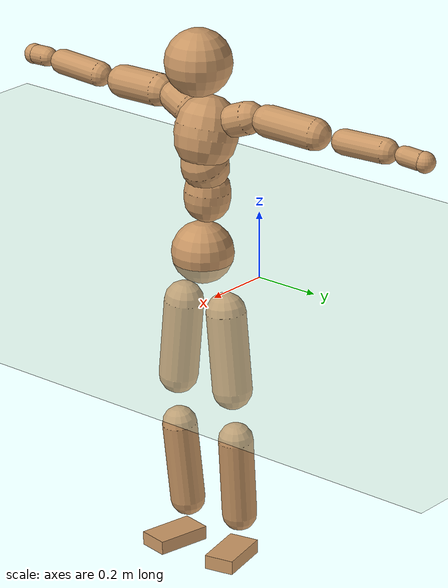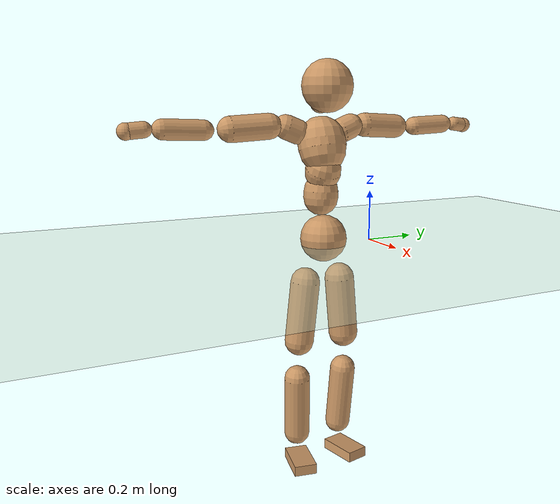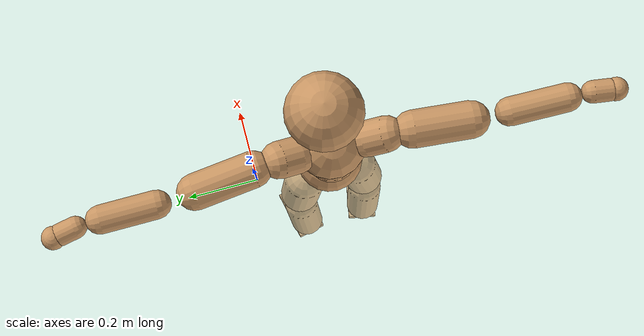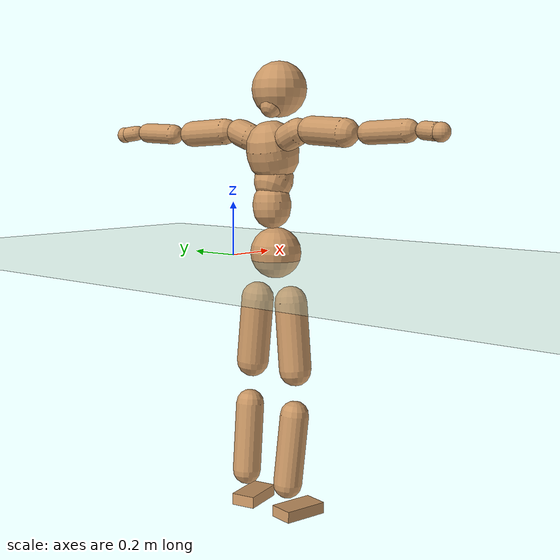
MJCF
<mujoco model="humanoid">
  <compiler coordinate="local" angle="radian"/>
  <default>
    <joint damping="0.0" armature="0.01" stiffness="0.0" limited="true"/>
    <geom conaffinity="1" condim="3" contype="7" margin="0.001" rgba="0.8 0.6 .4 1"/>
  </default>
  <asset>
    <texture type="skybox" builtin="gradient" rgb1=".4 .5 .6" rgb2="0 0 0" width="100" height="100"/>
    <texture builtin="flat" height="1278" mark="cross" markrgb="1 1 1" name="texgeom" random="0.01" rgb1="0.8 0.6 0.4" rgb2="0.8 0.6 0.4" type="cube" width="127"/>
    <texture builtin="checker" height="100" name="texplane" rgb1="0 0 0" rgb2="0.8 0.8 0.8" type="2d" width="100"/>
    <material name="MatPlane" reflectance="0.5" shininess="1" specular="1" texrepeat="60 60" texture="texplane"/>
    <material name="geom" texture="texgeom" texuniform="true"/>
  </asset>
  <worldbody>
    <light cutoff="100" diffuse="1 1 1" dir="-0 0 -1.3" directional="true" exponent="1" pos="0 0 1.3" specular=".1 .1 .1"/>
    <geom conaffinity="1" condim="3" name="floor" pos="0 0 0" rgba="0.8 0.9 0.8 1" size="100 100 .2" type="plane" material="MatPlane"/>
    <body name="Pelvis" pos="-0.0003 -0.2122 0.0246">
      <freejoint name="Pelvis"/>
      <geom type="sphere" contype="1" conaffinity="1" density="500" size="0.0926" pos="0.0000 0.0000 0.0000" name="Pelvis"/>
      <body name="L_Hip" pos="-0.0092 0.0719 -0.0927">
        <joint name="L_Hip_x" type="hinge" pos="0 0 0" axis="1 0 0" stiffness="800" damping="80" armature="0.02" range="-180.0000 180.0000"/>
        <joint name="L_Hip_y" type="hinge" pos="0 0 0" axis="0 1 0" stiffness="800" damping="80" armature="0.02" range="-180.0000 180.0000"/>
        <joint name="L_Hip_z" type="hinge" pos="0 0 0" axis="0 0 1" stiffness="800" damping="80" armature="0.02" range="-180.0000 180.0000"/>
        <geom type="capsule" contype="1" conaffinity="1" density="500" fromto="-0.0010 0.0074 -0.0799 -0.0039 0.0295 -0.3198" size="0.0597" name="L_Hip"/>
        <body name="L_Knee" pos="-0.0049 0.0368 -0.3997">
          <joint name="L_Knee_x" type="hinge" pos="0 0 0" axis="1 0 0" stiffness="800" damping="80" armature="0.02" range="-180.0000 180.0000"/>
          <joint name="L_Knee_y" type="hinge" pos="0 0 0" axis="0 1 0" stiffness="800" damping="80" armature="0.02" range="-180.0000 180.0000"/>
          <joint name="L_Knee_z" type="hinge" pos="0 0 0" axis="0 0 1" stiffness="800" damping="80" armature="0.02" range="-180.0000 180.0000"/>
          <geom type="capsule" contype="1" conaffinity="1" density="500" fromto="-0.0090 -0.0024 -0.0845 -0.0360 -0.0096 -0.3380" size="0.0524" name="L_Knee"/>
          <body name="L_Ankle" pos="-0.045 -0.0121 -0.4225">
            <joint name="L_Ankle_x" type="hinge" pos="0 0 0" axis="1 0 0" stiffness="800" damping="80" armature="0.02" range="-180.0000 180.0000"/>
            <joint name="L_Ankle_y" type="hinge" pos="0 0 0" axis="0 1 0" stiffness="800" damping="80" armature="0.02" range="-180.0000 180.0000"/>
            <joint name="L_Ankle_z" type="hinge" pos="0 0 0" axis="0 0 1" stiffness="800" damping="80" armature="0.02" range="-180.0000 180.0000"/>
            <geom type="box" contype="1" conaffinity="1" density="500" pos="0.0590 0.0127 -0.0297" size="0.082 0.0454 0.0215" quat="0.9944 0.0000 0.0000 0.1060" name="L_Ankle"/>
            <body name="L_Toe" pos="0.118 0.0254 -0.0595">
              <joint name="L_Toe_x" type="hinge" pos="0 0 0" axis="1 0 0" stiffness="500" damping="50" armature="0.02" range="-180.0000 180.0000"/>
              <joint name="L_Toe_y" type="hinge" pos="0 0 0" axis="0 1 0" stiffness="500" damping="50" armature="0.02" range="-180.0000 180.0000"/>
              <joint name="L_Toe_z" type="hinge" pos="0 0 0" axis="0 0 1" stiffness="500" damping="50" armature="0.02" range="-180.0000 180.0000"/>
              <geom type="box" contype="1" conaffinity="1" density="500" pos="0.0000 0.0000 0.0296" size="0.0009 0.0023 0.0011" quat="0.9937 0.0000 0.0000 0.1122" name="L_Toe"/>
            </body>
          </body>
        </body>
      </body>
      <body name="R_Hip" pos="-0.0049 -0.0693 -0.092">
        <joint name="R_Hip_x" type="hinge" pos="0 0 0" axis="1 0 0" stiffness="800" damping="80" armature="0.02" range="-180.0000 180.0000"/>
        <joint name="R_Hip_y" type="hinge" pos="0 0 0" axis="0 1 0" stiffness="800" damping="80" armature="0.02" range="-180.0000 180.0000"/>
        <joint name="R_Hip_z" type="hinge" pos="0 0 0" axis="0 0 1" stiffness="800" damping="80" armature="0.02" range="-180.0000 180.0000"/>
        <geom type="capsule" contype="1" conaffinity="1" density="500" fromto="-0.0014 -0.0087 -0.0816 -0.0057 -0.0348 -0.3264" size="0.0588" name="R_Hip"/>
        <body name="R_Knee" pos="-0.0071 -0.0435 -0.408">
          <joint name="R_Knee_x" type="hinge" pos="0 0 0" axis="1 0 0" stiffness="800" damping="80" armature="0.02" range="-180.0000 180.0000"/>
          <joint name="R_Knee_y" type="hinge" pos="0 0 0" axis="0 1 0" stiffness="800" damping="80" armature="0.02" range="-180.0000 180.0000"/>
          <joint name="R_Knee_z" type="hinge" pos="0 0 0" axis="0 0 1" stiffness="800" damping="80" armature="0.02" range="-180.0000 180.0000"/>
          <geom type="capsule" contype="1" conaffinity="1" density="500" fromto="-0.0085 0.0032 -0.0848 -0.0341 0.0126 -0.3394" size="0.0527" name="R_Knee"/>
          <body name="R_Ankle" pos="-0.0427 0.0158 -0.4242">
            <joint name="R_Ankle_x" type="hinge" pos="0 0 0" axis="1 0 0" stiffness="800" damping="80" armature="0.02" range="-180.0000 180.0000"/>
            <joint name="R_Ankle_y" type="hinge" pos="0 0 0" axis="0 1 0" stiffness="800" damping="80" armature="0.02" range="-180.0000 180.0000"/>
            <joint name="R_Ankle_z" type="hinge" pos="0 0 0" axis="0 0 1" stiffness="800" damping="80" armature="0.02" range="-180.0000 180.0000"/>
            <geom type="box" contype="1" conaffinity="1" density="500" pos="0.0608 -0.0115 -0.0255" size="0.0846 0.0463 0.0209" quat="0.9957 0.0000 0.0000 -0.0931" name="R_Ankle"/>
            <body name="R_Toe" pos="0.1217 -0.023 -0.0509">
              <joint name="R_Toe_x" type="hinge" pos="0 0 0" axis="1 0 0" stiffness="500" damping="50" armature="0.02" range="-180.0000 180.0000"/>
              <joint name="R_Toe_y" type="hinge" pos="0 0 0" axis="0 1 0" stiffness="500" damping="50" armature="0.02" range="-180.0000 180.0000"/>
              <joint name="R_Toe_z" type="hinge" pos="0 0 0" axis="0 0 1" stiffness="500" damping="50" armature="0.02" range="-180.0000 180.0000"/>
              <geom type="box" contype="1" conaffinity="1" density="500" pos="0.0000 0.0000 0.0276" size="0.0009 0.0023 0.0012" quat="0.9965 0.0000 0.0000 -0.0838" name="R_Toe"/>
            </body>
          </body>
        </body>
      </body>
      <body name="Torso" pos="-0.0212 -0.0023 0.1063">
        <joint name="Torso_x" type="hinge" pos="0 0 0" axis="1 0 0" stiffness="1000" damping="100" armature="0.02" range="-180.0000 180.0000"/>
        <joint name="Torso_y" type="hinge" pos="0 0 0" axis="0 1 0" stiffness="1000" damping="100" armature="0.02" range="-180.0000 180.0000"/>
        <joint name="Torso_z" type="hinge" pos="0 0 0" axis="0 0 1" stiffness="1000" damping="100" armature="0.02" range="-180.0000 180.0000"/>
        <geom type="capsule" contype="1" conaffinity="1" density="500" fromto="-0.0006 0.0023 0.0784 -0.0004 0.0015 0.0522" size="0.0687" name="Torso"/>
        <body name="Spine" pos="-0.001 0.0038 0.1306">
          <joint name="Spine_x" type="hinge" pos="0 0 0" axis="1 0 0" stiffness="1000" damping="100" armature="0.02" range="-180.0000 180.0000"/>
          <joint name="Spine_y" type="hinge" pos="0 0 0" axis="0 1 0" stiffness="1000" damping="100" armature="0.02" range="-180.0000 180.0000"/>
          <joint name="Spine_z" type="hinge" pos="0 0 0" axis="0 0 1" stiffness="1000" damping="100" armature="0.02" range="-180.0000 180.0000"/>
          <geom type="capsule" contype="1" conaffinity="1" density="500" fromto="0.0158 0.0005 0.0309 0.0105 0.0004 0.0206" size="0.0703" name="Spine"/>
          <body name="Chest" pos="0.0263 0.0009 0.0514">
            <joint name="Chest_x" type="hinge" pos="0 0 0" axis="1 0 0" stiffness="1000" damping="100" armature="0.02" range="-180.0000 180.0000"/>
            <joint name="Chest_y" type="hinge" pos="0 0 0" axis="0 1 0" stiffness="1000" damping="100" armature="0.02" range="-180.0000 180.0000"/>
            <joint name="Chest_z" type="hinge" pos="0 0 0" axis="0 0 1" stiffness="1000" damping="100" armature="0.02" range="-180.0000 180.0000"/>
            <geom type="capsule" contype="1" conaffinity="1" density="500" fromto="-0.0243 -0.0014 0.0909 -0.0162 -0.0010 0.0606" size="0.0937" name="Chest"/>
            <body name="Neck" pos="-0.0419 -0.0043 0.2189">
              <joint name="Neck_x" type="hinge" pos="0 0 0" axis="1 0 0" stiffness="500" damping="50" armature="0.02" range="-180.0000 180.0000"/>
              <joint name="Neck_y" type="hinge" pos="0 0 0" axis="0 1 0" stiffness="500" damping="50" armature="0.02" range="-180.0000 180.0000"/>
              <joint name="Neck_z" type="hinge" pos="0 0 0" axis="0 0 1" stiffness="500" damping="50" armature="0.02" range="-180.0000 180.0000"/>
              <geom type="capsule" contype="1" conaffinity="1" density="500" fromto="0.0118 0.0011 0.0151 0.0473 0.0045 0.0605" size="0.0408" name="Neck"/>
              <body name="Head" pos="0.0591 0.0056 0.0756">
                <joint name="Head_x" type="hinge" pos="0 0 0" axis="1 0 0" stiffness="500" damping="50" armature="0.02" range="-180.0000 180.0000"/>
                <joint name="Head_y" type="hinge" pos="0 0 0" axis="0 1 0" stiffness="500" damping="50" armature="0.02" range="-180.0000 180.0000"/>
                <joint name="Head_z" type="hinge" pos="0 0 0" axis="0 0 1" stiffness="500" damping="50" armature="0.02" range="-180.0000 180.0000"/>
                <geom type="sphere" contype="1" conaffinity="1" density="500" size="0.0990" pos="0.0000 0.0000 0.0000" name="Head"/>
              </body>
            </body>
            <body name="L_Thorax" pos="-0.0372 0.0725 0.1185">
              <joint name="L_Thorax_x" type="hinge" pos="0 0 0" axis="1 0 0" stiffness="500" damping="50" armature="0.02" range="-180.0000 180.0000"/>
              <joint name="L_Thorax_y" type="hinge" pos="0 0 0" axis="0 1 0" stiffness="500" damping="50" armature="0.02" range="-180.0000 180.0000"/>
              <joint name="L_Thorax_z" type="hinge" pos="0 0 0" axis="0 0 1" stiffness="500" damping="50" armature="0.02" range="-180.0000 180.0000"/>
              <geom type="capsule" contype="1" conaffinity="1" density="500" fromto="-0.0013 0.0159 0.0062 -0.0053 0.0636 0.0247" size="0.0483" name="L_Thorax"/>
              <body name="L_Shoulder" pos="-0.0066 0.0795 0.0309">
                <joint name="L_Shoulder_x" type="hinge" pos="0 0 0" axis="1 0 0" stiffness="500" damping="50" armature="0.02" range="-720.0000 720.0000"/>
                <joint name="L_Shoulder_y" type="hinge" pos="0 0 0" axis="0 1 0" stiffness="500" damping="50" armature="0.02" range="-720.0000 720.0000"/>
                <joint name="L_Shoulder_z" type="hinge" pos="0 0 0" axis="0 0 1" stiffness="500" damping="50" armature="0.02" range="-720.0000 720.0000"/>
                <geom type="capsule" contype="1" conaffinity="1" density="500" fromto="-0.0052 0.0517 -0.0027 -0.0209 0.2069 -0.0109" size="0.0472" name="L_Shoulder"/>
                <body name="L_Elbow" pos="-0.0261 0.2586 -0.0136">
                  <joint name="L_Elbow_x" type="hinge" pos="0 0 0" axis="1 0 0" stiffness="500" damping="50" armature="0.02" range="-720.0000 720.0000"/>
                  <joint name="L_Elbow_y" type="hinge" pos="0 0 0" axis="0 1 0" stiffness="500" damping="50" armature="0.02" range="-720.0000 720.0000"/>
                  <joint name="L_Elbow_z" type="hinge" pos="0 0 0" axis="0 0 1" stiffness="500" damping="50" armature="0.02" range="-720.0000 720.0000"/>
                  <geom type="capsule" contype="1" conaffinity="1" density="500" fromto="-0.0004 0.0480 0.0020 -0.0014 0.1921 0.0081" size="0.0372" name="L_Elbow"/>
                  <body name="L_Wrist" pos="-0.0018 0.2401 0.0101">
                    <joint name="L_Wrist_x" type="hinge" pos="0 0 0" axis="1 0 0" stiffness="300" damping="30" armature="0.02" range="-180.0000 180.0000"/>
                    <joint name="L_Wrist_y" type="hinge" pos="0 0 0" axis="0 1 0" stiffness="300" damping="30" armature="0.02" range="-180.0000 180.0000"/>
                    <joint name="L_Wrist_z" type="hinge" pos="0 0 0" axis="0 0 1" stiffness="300" damping="30" armature="0.02" range="-180.0000 180.0000"/>
                    <geom type="capsule" contype="1" conaffinity="1" density="500" fromto="-0.0025 0.0151 -0.0019 -0.0102 0.0605 -0.0075" size="0.0285" name="L_Wrist"/>
                    <body name="L_Hand" pos="-0.0127 0.0757 -0.0093">
                      <joint name="L_Hand_x" type="hinge" pos="0 0 0" axis="1 0 0" stiffness="300" damping="30" armature="0.02" range="-180.0000 180.0000"/>
                      <joint name="L_Hand_y" type="hinge" pos="0 0 0" axis="0 1 0" stiffness="300" damping="30" armature="0.02" range="-180.0000 180.0000"/>
                      <joint name="L_Hand_z" type="hinge" pos="0 0 0" axis="0 0 1" stiffness="300" damping="30" armature="0.02" range="-180.0000 180.0000"/>
                      <geom type="sphere" contype="1" conaffinity="1" density="500" size="0.0305" pos="0.0000 0.0000 0.0000" name="L_Hand"/>
                    </body>
                  </body>
                </body>
              </body>
            </body>
            <body name="R_Thorax" pos="-0.0423 -0.0753 0.117">
              <joint name="R_Thorax_x" type="hinge" pos="0 0 0" axis="1 0 0" stiffness="500" damping="50" armature="0.02" range="-180.0000 180.0000"/>
              <joint name="R_Thorax_y" type="hinge" pos="0 0 0" axis="0 1 0" stiffness="500" damping="50" armature="0.02" range="-180.0000 180.0000"/>
              <joint name="R_Thorax_z" type="hinge" pos="0 0 0" axis="0 0 1" stiffness="500" damping="50" armature="0.02" range="-180.0000 180.0000"/>
              <geom type="capsule" contype="1" conaffinity="1" density="500" fromto="-0.0016 -0.0163 0.0067 -0.0062 -0.0653 0.0269" size="0.0471" name="R_Thorax"/>
              <body name="R_Shoulder" pos="-0.0078 -0.0817 0.0336">
                <joint name="R_Shoulder_x" type="hinge" pos="0 0 0" axis="1 0 0" stiffness="500" damping="50" armature="0.02" range="-720.0000 720.0000"/>
                <joint name="R_Shoulder_y" type="hinge" pos="0 0 0" axis="0 1 0" stiffness="500" damping="50" armature="0.02" range="-720.0000 720.0000"/>
                <joint name="R_Shoulder_z" type="hinge" pos="0 0 0" axis="0 0 1" stiffness="500" damping="50" armature="0.02" range="-720.0000 720.0000"/>
                <geom type="capsule" contype="1" conaffinity="1" density="500" fromto="-0.0044 -0.0500 -0.0031 -0.0174 -0.2001 -0.0124" size="0.0489" name="R_Shoulder"/>
                <body name="R_Elbow" pos="-0.0218 -0.2501 -0.0154">
                  <joint name="R_Elbow_x" type="hinge" pos="0 0 0" axis="1 0 0" stiffness="500" damping="50" armature="0.02" range="-720.0000 720.0000"/>
                  <joint name="R_Elbow_y" type="hinge" pos="0 0 0" axis="0 1 0" stiffness="500" damping="50" armature="0.02" range="-720.0000 720.0000"/>
                  <joint name="R_Elbow_z" type="hinge" pos="0 0 0" axis="0 0 1" stiffness="500" damping="50" armature="0.02" range="-720.0000 720.0000"/>
                  <geom type="capsule" contype="1" conaffinity="1" density="500" fromto="-0.0012 -0.0499 0.0018 -0.0050 -0.1996 0.0072" size="0.0377" name="R_Elbow"/>
                  <body name="R_Wrist" pos="-0.0062 -0.2496 0.0089">
                    <joint name="R_Wrist_x" type="hinge" pos="0 0 0" axis="1 0 0" stiffness="300" damping="30" armature="0.02" range="-180.0000 180.0000"/>
                    <joint name="R_Wrist_y" type="hinge" pos="0 0 0" axis="0 1 0" stiffness="300" damping="30" armature="0.02" range="-180.0000 180.0000"/>
                    <joint name="R_Wrist_z" type="hinge" pos="0 0 0" axis="0 0 1" stiffness="300" damping="30" armature="0.02" range="-180.0000 180.0000"/>
                    <geom type="capsule" contype="1" conaffinity="1" density="500" fromto="-0.0020 -0.0153 -0.0014 -0.0078 -0.0611 -0.0055" size="0.0294" name="R_Wrist"/>
                    <body name="R_Hand" pos="-0.0098 -0.0764 -0.0069">
                      <joint name="R_Hand_x" type="hinge" pos="0 0 0" axis="1 0 0" stiffness="300" damping="30" armature="0.02" range="-180.0000 180.0000"/>
                      <joint name="R_Hand_y" type="hinge" pos="0 0 0" axis="0 1 0" stiffness="300" damping="30" armature="0.02" range="-180.0000 180.0000"/>
                      <joint name="R_Hand_z" type="hinge" pos="0 0 0" axis="0 0 1" stiffness="300" damping="30" armature="0.02" range="-180.0000 180.0000"/>
                      <geom type="sphere" contype="1" conaffinity="1" density="500" size="0.0308" pos="0.0000 0.0000 0.0000" name="R_Hand"/>
                    </body>
                  </body>
                </body>
              </body>
            </body>
          </body>
        </body>
      </body>
    </body>
  </worldbody>
  <actuator>
    <motor name="L_Hip_x" joint="L_Hip_x" gear="500"/>
    <motor name="L_Hip_y" joint="L_Hip_y" gear="500"/>
    <motor name="L_Hip_z" joint="L_Hip_z" gear="500"/>
    <motor name="L_Knee_x" joint="L_Knee_x" gear="500"/>
    <motor name="L_Knee_y" joint="L_Knee_y" gear="500"/>
    <motor name="L_Knee_z" joint="L_Knee_z" gear="500"/>
    <motor name="L_Ankle_x" joint="L_Ankle_x" gear="500"/>
    <motor name="L_Ankle_y" joint="L_Ankle_y" gear="500"/>
    <motor name="L_Ankle_z" joint="L_Ankle_z" gear="500"/>
    <motor name="L_Toe_x" joint="L_Toe_x" gear="500"/>
    <motor name="L_Toe_y" joint="L_Toe_y" gear="500"/>
    <motor name="L_Toe_z" joint="L_Toe_z" gear="500"/>
    <motor name="R_Hip_x" joint="R_Hip_x" gear="500"/>
    <motor name="R_Hip_y" joint="R_Hip_y" gear="500"/>
    <motor name="R_Hip_z" joint="R_Hip_z" gear="500"/>
    <motor name="R_Knee_x" joint="R_Knee_x" gear="500"/>
    <motor name="R_Knee_y" joint="R_Knee_y" gear="500"/>
    <motor name="R_Knee_z" joint="R_Knee_z" gear="500"/>
    <motor name="R_Ankle_x" joint="R_Ankle_x" gear="500"/>
    <motor name="R_Ankle_y" joint="R_Ankle_y" gear="500"/>
    <motor name="R_Ankle_z" joint="R_Ankle_z" gear="500"/>
    <motor name="R_Toe_x" joint="R_Toe_x" gear="500"/>
    <motor name="R_Toe_y" joint="R_Toe_y" gear="500"/>
    <motor name="R_Toe_z" joint="R_Toe_z" gear="500"/>
    <motor name="Torso_x" joint="Torso_x" gear="500"/>
    <motor name="Torso_y" joint="Torso_y" gear="500"/>
    <motor name="Torso_z" joint="Torso_z" gear="500"/>
    <motor name="Spine_x" joint="Spine_x" gear="500"/>
    <motor name="Spine_y" joint="Spine_y" gear="500"/>
    <motor name="Spine_z" joint="Spine_z" gear="500"/>
    <motor name="Chest_x" joint="Chest_x" gear="500"/>
    <motor name="Chest_y" joint="Chest_y" gear="500"/>
    <motor name="Chest_z" joint="Chest_z" gear="500"/>
    <motor name="Neck_x" joint="Neck_x" gear="500"/>
    <motor name="Neck_y" joint="Neck_y" gear="500"/>
    <motor name="Neck_z" joint="Neck_z" gear="500"/>
    <motor name="Head_x" joint="Head_x" gear="500"/>
    <motor name="Head_y" joint="Head_y" gear="500"/>
    <motor name="Head_z" joint="Head_z" gear="500"/>
    <motor name="L_Thorax_x" joint="L_Thorax_x" gear="500"/>
    <motor name="L_Thorax_y" joint="L_Thorax_y" gear="500"/>
    <motor name="L_Thorax_z" joint="L_Thorax_z" gear="500"/>
    <motor name="L_Shoulder_x" joint="L_Shoulder_x" gear="500"/>
    <motor name="L_Shoulder_y" joint="L_Shoulder_y" gear="500"/>
    <motor name="L_Shoulder_z" joint="L_Shoulder_z" gear="500"/>
    <motor name="L_Elbow_x" joint="L_Elbow_x" gear="500"/>
    <motor name="L_Elbow_y" joint="L_Elbow_y" gear="500"/>
    <motor name="L_Elbow_z" joint="L_Elbow_z" gear="500"/>
    <motor name="L_Wrist_x" joint="L_Wrist_x" gear="500"/>
    <motor name="L_Wrist_y" joint="L_Wrist_y" gear="500"/>
    <motor name="L_Wrist_z" joint="L_Wrist_z" gear="500"/>
    <motor name="L_Hand_x" joint="L_Hand_x" gear="500"/>
    <motor name="L_Hand_y" joint="L_Hand_y" gear="500"/>
    <motor name="L_Hand_z" joint="L_Hand_z" gear="500"/>
    <motor name="R_Thorax_x" joint="R_Thorax_x" gear="500"/>
    <motor name="R_Thorax_y" joint="R_Thorax_y" gear="500"/>
    <motor name="R_Thorax_z" joint="R_Thorax_z" gear="500"/>
    <motor name="R_Shoulder_x" joint="R_Shoulder_x" gear="500"/>
    <motor name="R_Shoulder_y" joint="R_Shoulder_y" gear="500"/>
    <motor name="R_Shoulder_z" joint="R_Shoulder_z" gear="500"/>
    <motor name="R_Elbow_x" joint="R_Elbow_x" gear="500"/>
    <motor name="R_Elbow_y" joint="R_Elbow_y" gear="500"/>
    <motor name="R_Elbow_z" joint="R_Elbow_z" gear="500"/>
    <motor name="R_Wrist_x" joint="R_Wrist_x" gear="500"/>
    <motor name="R_Wrist_y" joint="R_Wrist_y" gear="500"/>
    <motor name="R_Wrist_z" joint="R_Wrist_z" gear="500"/>
    <motor name="R_Hand_x" joint="R_Hand_x" gear="500"/>
    <motor name="R_Hand_y" joint="R_Hand_y" gear="500"/>
    <motor name="R_Hand_z" joint="R_Hand_z" gear="500"/>
  </actuator>
  <contact>
    <exclude body1="Torso" body2="Chest"/>
    <exclude body1="Head" body2="Chest"/>
    <exclude body1="R_Knee" body2="R_Toe"/>
    <exclude body1="R_Knee" body2="L_Ankle"/>
    <exclude body1="R_Knee" body2="L_Toe"/>
    <exclude body1="L_Knee" body2="L_Toe"/>
    <exclude body1="L_Knee" body2="R_Ankle"/>
    <exclude body1="L_Knee" body2="R_Toe"/>
    <exclude body1="L_Shoulder" body2="Chest"/>
    <exclude body1="R_Shoulder" body2="Chest"/>
  </contact>
  <sensor/>
  <size njmax="700" nconmax="700"/>
</mujoco>
